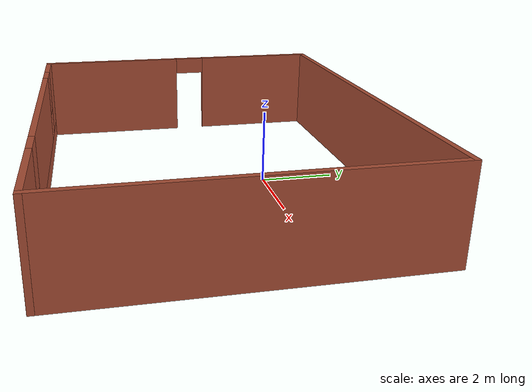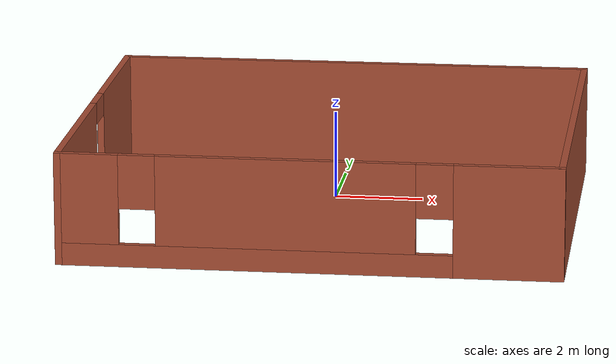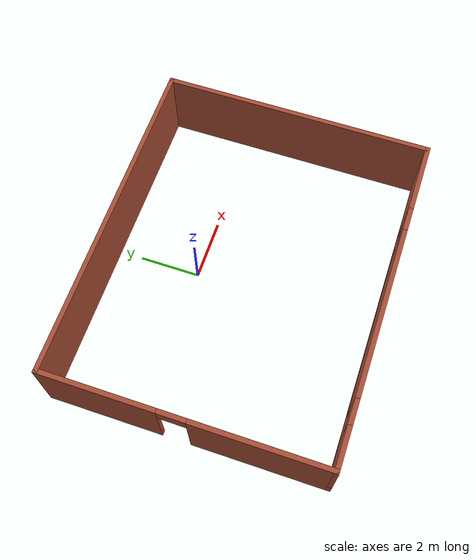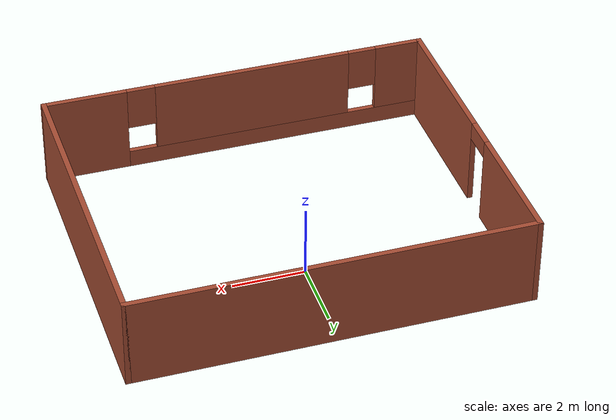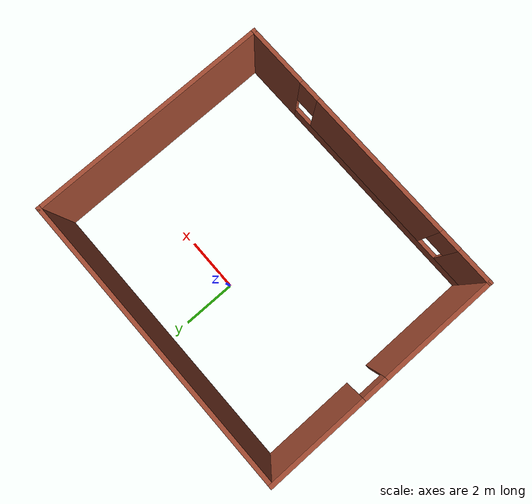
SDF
<?xml version='1.0'?>
<sdf version='1.6'>
  <model name='basicBuilding'>
    <pose frame=''>0.104667 -1.60884 0 0 -0 0</pose>
    <link name='Wall_2'>
      <pose frame=''>-5.425 0 0 0 -0 1.5708</pose>
      <visual name='Wall_2_Visual_0'>
        <pose frame=''>-2.31293 0 1.25 0 -0 0</pose>
        <geometry>
          <box>
            <size>4.37413 0.15 2.5</size>
          </box>
        </geometry>
        <material>
          <script>
            <uri>file://media/materials/scripts/gazebo.material</uri>
            <name>Gazebo/Bricks</name>
          </script>
          <ambient>1 1 1 1</ambient>
        </material>
        <meta>
          <layer>0</layer>
        </meta>
      </visual>
      <collision name='Wall_2_Collision_0'>
        <geometry>
          <box>
            <size>4.37413 0.15 2.5</size>
          </box>
        </geometry>
        <pose frame=''>-2.31293 0 1.25 0 -0 0</pose>
      </collision>
      <visual name='Wall_2_Visual_1'>
        <pose frame=''>2.63707 0 1.25 0 -0 0</pose>
        <geometry>
          <box>
            <size>3.72587 0.15 2.5</size>
          </box>
        </geometry>
        <material>
          <script>
            <uri>file://media/materials/scripts/gazebo.material</uri>
            <name>Gazebo/Bricks</name>
          </script>
          <ambient>1 1 1 1</ambient>
        </material>
        <meta>
          <layer>0</layer>
        </meta>
      </visual>
      <collision name='Wall_2_Collision_1'>
        <geometry>
          <box>
            <size>3.72587 0.15 2.5</size>
          </box>
        </geometry>
        <pose frame=''>2.63707 0 1.25 0 -0 0</pose>
      </collision>
      <visual name='Wall_2_Visual_2'>
        <pose frame=''>0.324133 0 2.25 0 -0 0</pose>
        <geometry>
          <box>
            <size>0.9 0.15 0.5</size>
          </box>
        </geometry>
        <material>
          <script>
            <uri>file://media/materials/scripts/gazebo.material</uri>
            <name>Gazebo/Bricks</name>
          </script>
          <ambient>1 1 1 1</ambient>
        </material>
        <meta>
          <layer>0</layer>
        </meta>
      </visual>
      <collision name='Wall_2_Collision_2'>
        <geometry>
          <box>
            <size>0.9 0.15 0.5</size>
          </box>
        </geometry>
        <pose frame=''>0.324133 0 2.25 0 -0 0</pose>
      </collision>
    </link>
    <link name='Wall_3'>
      <collision name='Wall_3_Collision'>
        <geometry>
          <box>
            <size>11 0.15 2.5</size>
          </box>
        </geometry>
        <pose frame=''>0 0 1.25 0 -0 0</pose>
      </collision>
      <visual name='Wall_3_Visual'>
        <pose frame=''>0 0 1.25 0 -0 0</pose>
        <geometry>
          <box>
            <size>11 0.15 2.5</size>
          </box>
        </geometry>
        <material>
          <script>
            <uri>file://media/materials/scripts/gazebo.material</uri>
            <name>Gazebo/Bricks</name>
          </script>
          <ambient>0.760784 0.662745 0.627451 1</ambient>
        </material>
        <meta>
          <layer>0</layer>
        </meta>
      </visual>
      <pose frame=''>0 4.425 0 0 -0 0</pose>
    </link>
    <link name='Wall_4'>
      <collision name='Wall_4_Collision'>
        <geometry>
          <box>
            <size>9 0.15 2.5</size>
          </box>
        </geometry>
        <pose frame=''>0 0 1.25 0 -0 0</pose>
      </collision>
      <visual name='Wall_4_Visual'>
        <pose frame=''>0 0 1.25 0 -0 0</pose>
        <geometry>
          <box>
            <size>9 0.15 2.5</size>
          </box>
        </geometry>
        <material>
          <script>
            <uri>file://media/materials/scripts/gazebo.material</uri>
            <name>Gazebo/Bricks</name>
          </script>
          <ambient>0.760784 0.662745 0.627451 1</ambient>
        </material>
        <meta>
          <layer>0</layer>
        </meta>
      </visual>
      <pose frame=''>5.425 0 0 0 0 -1.5708</pose>
    </link>
    <link name='Wall_5'>
      <pose frame=''>0 -4.425 0 0 -0 3.14159</pose>
      <visual name='Wall_5_Visual_0'>
        <pose frame=''>-4.30944 0 1.25 0 -0 0</pose>
        <geometry>
          <box>
            <size>2.38112 0.15 2.5</size>
          </box>
        </geometry>
        <material>
          <script>
            <uri>file://media/materials/scripts/gazebo.material</uri>
            <name>Gazebo/Bricks</name>
          </script>
          <ambient>0.760784 0.662745 0.627451 1</ambient>
        </material>
        <meta>
          <layer>0</layer>
        </meta>
      </visual>
      <collision name='Wall_5_Collision_0'>
        <geometry>
          <box>
            <size>2.38112 0.15 2.5</size>
          </box>
        </geometry>
        <pose frame=''>-4.30944 0 1.25 0 -0 0</pose>
      </collision>
      <visual name='Wall_5_Visual_1'>
        <pose frame=''>1.19056 0 0.25 0 -0 0</pose>
        <geometry>
          <box>
            <size>8.61888 0.15 0.5</size>
          </box>
        </geometry>
        <material>
          <script>
            <uri>file://media/materials/scripts/gazebo.material</uri>
            <name>Gazebo/Bricks</name>
          </script>
          <ambient>0.760784 0.662745 0.627451 1</ambient>
        </material>
        <meta>
          <layer>0</layer>
        </meta>
      </visual>
      <collision name='Wall_5_Collision_1'>
        <geometry>
          <box>
            <size>8.61888 0.15 0.5</size>
          </box>
        </geometry>
        <pose frame=''>1.19056 0 0.25 0 -0 0</pose>
      </collision>
      <visual name='Wall_5_Visual_2'>
        <pose frame=''>0.491179 0 1.5 0 -0 0</pose>
        <geometry>
          <box>
            <size>5.62012 0.15 2</size>
          </box>
        </geometry>
        <material>
          <script>
            <uri>file://media/materials/scripts/gazebo.material</uri>
            <name>Gazebo/Bricks</name>
          </script>
          <ambient>0.760784 0.662745 0.627451 1</ambient>
        </material>
        <meta>
          <layer>0</layer>
        </meta>
      </visual>
      <collision name='Wall_5_Collision_2'>
        <geometry>
          <box>
            <size>5.62012 0.15 2</size>
          </box>
        </geometry>
        <pose frame=''>0.491179 0 1.5 0 -0 0</pose>
      </collision>
      <visual name='Wall_5_Visual_3'>
        <pose frame=''>4.80062 0 1.5 0 -0 0</pose>
        <geometry>
          <box>
            <size>1.39876 0.15 2</size>
          </box>
        </geometry>
        <material>
          <script>
            <uri>file://media/materials/scripts/gazebo.material</uri>
            <name>Gazebo/Bricks</name>
          </script>
          <ambient>0.760784 0.662745 0.627451 1</ambient>
        </material>
        <meta>
          <layer>0</layer>
        </meta>
      </visual>
      <collision name='Wall_5_Collision_3'>
        <geometry>
          <box>
            <size>1.39876 0.15 2</size>
          </box>
        </geometry>
        <pose frame=''>4.80062 0 1.5 0 -0 0</pose>
      </collision>
      <visual name='Wall_5_Visual_4'>
        <pose frame=''>-2.71888 0 1.9 0 -0 0</pose>
        <geometry>
          <box>
            <size>0.8 0.15 1.2</size>
          </box>
        </geometry>
        <material>
          <script>
            <uri>file://media/materials/scripts/gazebo.material</uri>
            <name>Gazebo/Bricks</name>
          </script>
          <ambient>0.760784 0.662745 0.627451 1</ambient>
        </material>
        <meta>
          <layer>0</layer>
        </meta>
      </visual>
      <collision name='Wall_5_Collision_4'>
        <geometry>
          <box>
            <size>0.8 0.15 1.2</size>
          </box>
        </geometry>
        <pose frame=''>-2.71888 0 1.9 0 -0 0</pose>
      </collision>
      <visual name='Wall_5_Visual_5'>
        <pose frame=''>3.70124 0 1.9 0 -0 0</pose>
        <geometry>
          <box>
            <size>0.8 0.15 1.2</size>
          </box>
        </geometry>
        <material>
          <script>
            <uri>file://media/materials/scripts/gazebo.material</uri>
            <name>Gazebo/Bricks</name>
          </script>
          <ambient>0.760784 0.662745 0.627451 1</ambient>
        </material>
        <meta>
          <layer>0</layer>
        </meta>
      </visual>
      <collision name='Wall_5_Collision_5'>
        <geometry>
          <box>
            <size>0.8 0.15 1.2</size>
          </box>
        </geometry>
        <pose frame=''>3.70124 0 1.9 0 -0 0</pose>
      </collision>
    </link>
    <static>1</static>
  </model>
</sdf>
